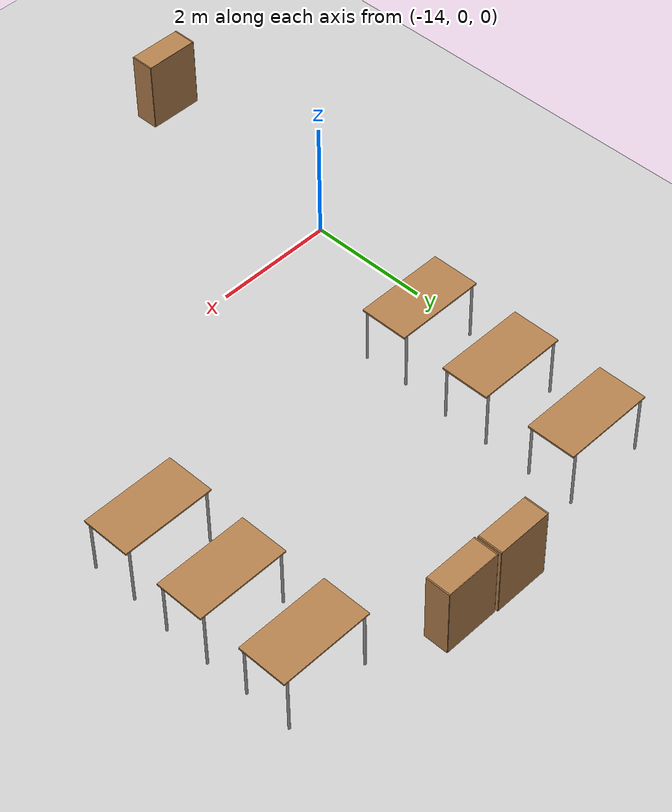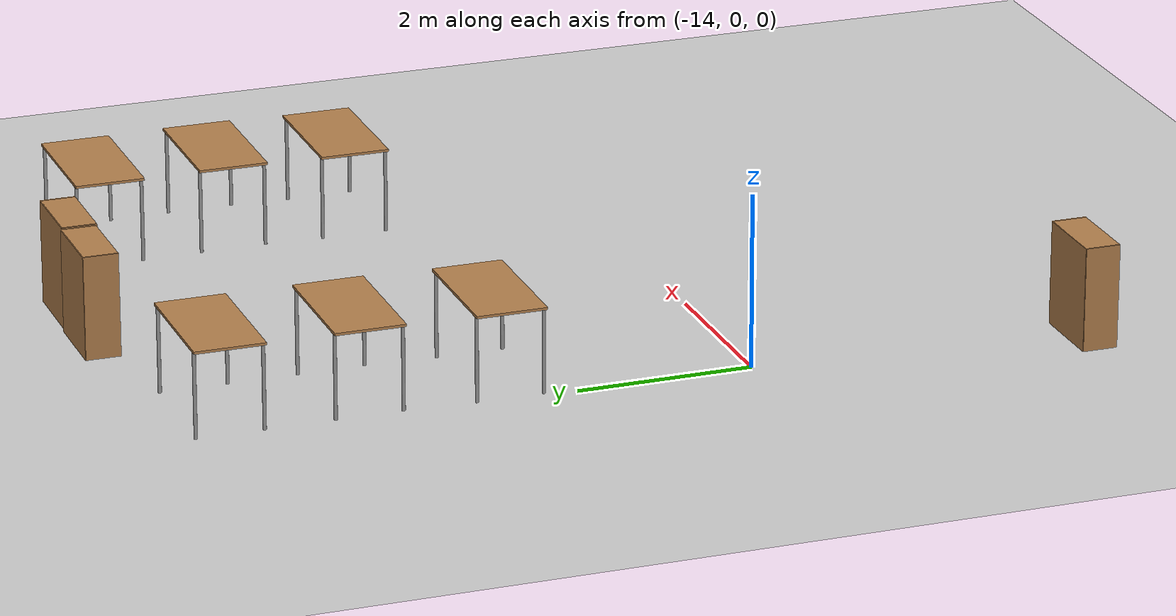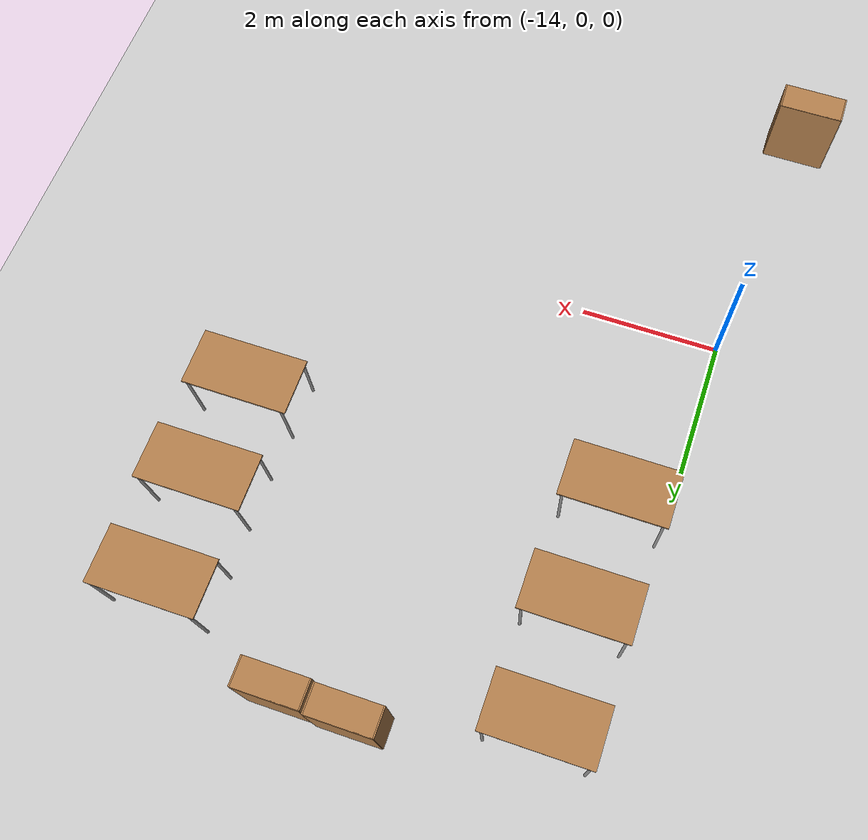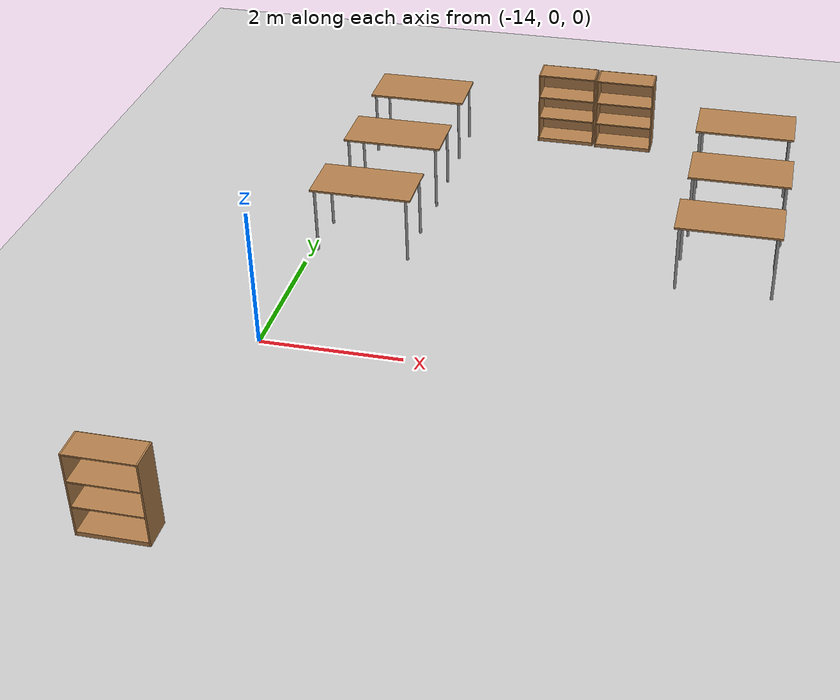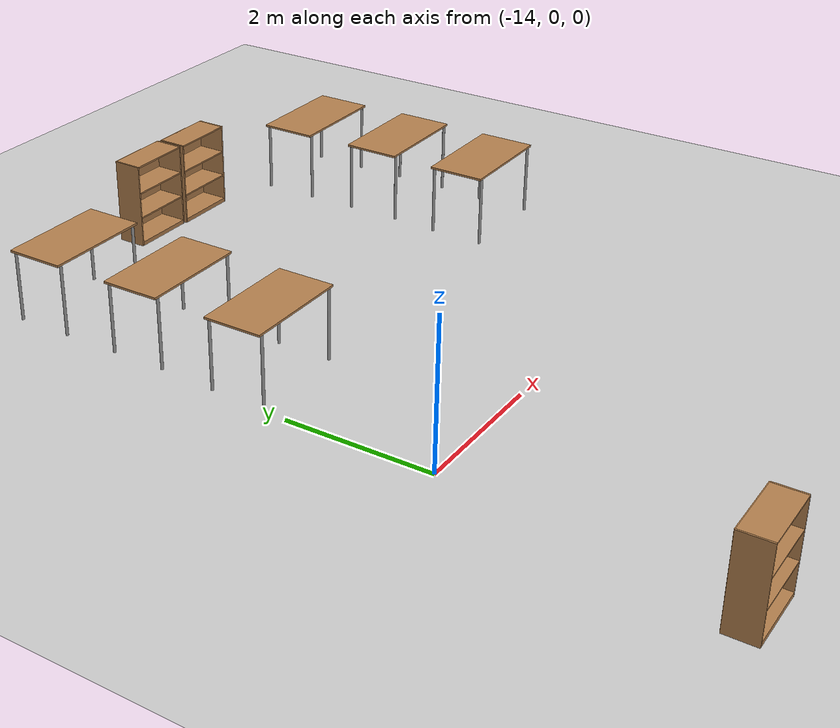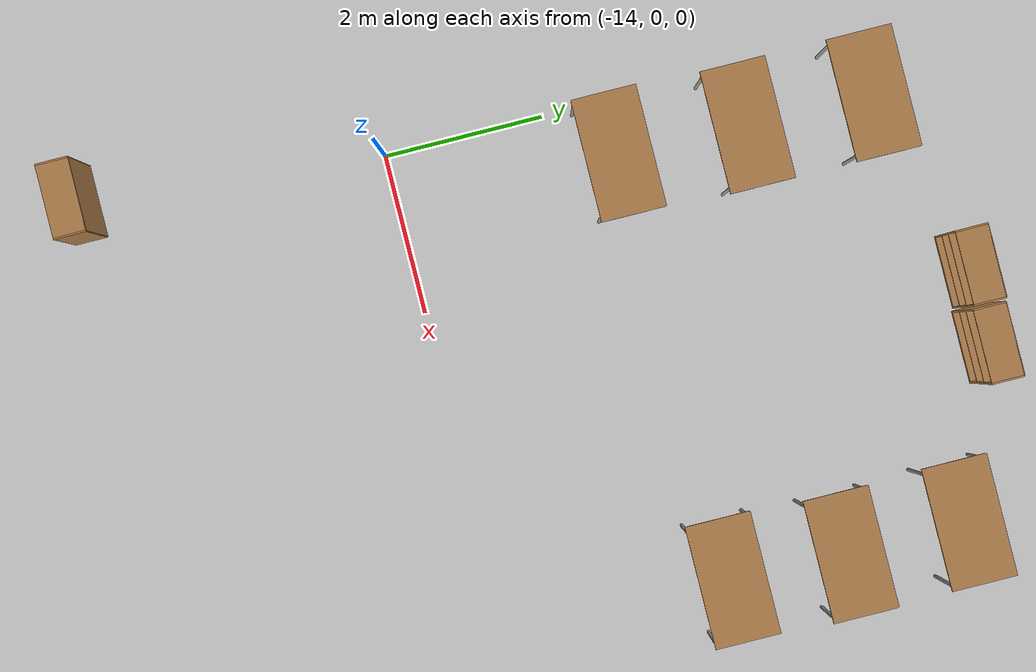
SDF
<sdf version="1.6">
 <world name="default">
  <model name="ground_plane">
   <static>1</static>
   <link name="link">
    <collision name="collision">
     <geometry><plane><normal>0 0 1</normal><size>100 100</size></plane></geometry>
     <surface>
      <contact><collide_bitmask>65535</collide_bitmask></contact>
      <friction><ode><mu>100</mu><mu2>50</mu2></ode></friction>
     </surface>
    </collision>
    <visual name="visual">
     <cast_shadows>0</cast_shadows>
     <geometry><plane><normal>0 0 1</normal><size>100 100</size></plane></geometry>
     <material>
      <script><uri>file://media/materials/scripts/gazebo.material</uri><name>Gazebo/Grey</name></script>
     </material>
    </visual>
   </link>
  </model>
  <model name="bookshelf_2">
   <static>1</static>
   <link name="link">
    <inertial><mass>1</mass></inertial>
    <collision name="back">
     <pose>0 0.005 0.6 0 -0 0</pose>
     <geometry><box><size>0.9 0.01 1.2</size></box></geometry>
    </collision>
    <visual name="visual1">
     <pose>0 0.005 0.6 0 -0 0</pose>
     <geometry><box><size>0.9 0.01 1.2</size></box></geometry>
     <material>
      <script><uri>file://media/materials/scripts/gazebo.material</uri><name>Gazebo/Wood</name></script>
     </material>
    </visual>
    <collision name="left_side">
     <pose>0.45 -0.195 0.6 0 -0 0</pose>
     <geometry><box><size>0.02 0.4 1.2</size></box></geometry>
    </collision>
    <visual name="visual2">
     <pose>0.45 -0.195 0.6 0 -0 0</pose>
     <geometry><box><size>0.02 0.4 1.2</size></box></geometry>
     <material>
      <script><uri>file://media/materials/scripts/gazebo.material</uri><name>Gazebo/Wood</name></script>
     </material>
    </visual>
    <collision name="right_side">
     <pose>-0.45 -0.195 0.6 0 -0 0</pose>
     <geometry><box><size>0.02 0.4 1.2</size></box></geometry>
    </collision>
    <visual name="visual3">
     <pose>-0.45 -0.195 0.6 0 -0 0</pose>
     <geometry><box><size>0.02 0.4 1.2</size></box></geometry>
     <material>
      <script><uri>file://media/materials/scripts/gazebo.material</uri><name>Gazebo/Wood</name></script>
     </material>
    </visual>
    <collision name="bottom">
     <pose>0 -0.195 0.03 0 -0 0</pose>
     <geometry><box><size>0.88 0.4 0.06</size></box></geometry>
    </collision>
    <visual name="visual4">
     <pose>0 -0.195 0.03 0 -0 0</pose>
     <geometry><box><size>0.88 0.4 0.06</size></box></geometry>
     <material>
      <script><uri>file://media/materials/scripts/gazebo.material</uri><name>Gazebo/Wood</name></script>
     </material>
    </visual>
    <collision name="top">
     <pose>0 -0.195 1.19 0 -0 0</pose>
     <geometry><box><size>0.88 0.4 0.02</size></box></geometry>
    </collision>
    <visual name="visual5">
     <pose>0 -0.195 1.19 0 -0 0</pose>
     <geometry><box><size>0.88 0.4 0.02</size></box></geometry>
     <material>
      <script><uri>file://media/materials/scripts/gazebo.material</uri><name>Gazebo/Wood</name></script>
     </material>
    </visual>
    <collision name="low_shelf">
     <pose>0 -0.195 0.43 0 -0 0</pose>
     <geometry><box><size>0.88 0.4 0.02</size></box></geometry>
    </collision>
    <visual name="visual6">
     <pose>0 -0.195 0.43 0 -0 0</pose>
     <geometry><box><size>0.88 0.4 0.02</size></box></geometry>
     <material>
      <script><uri>file://media/materials/scripts/gazebo.material</uri><name>Gazebo/Wood</name></script>
     </material>
    </visual>
    <collision name="high_shelf">
     <pose>0 -0.195 0.8 0 -0 0</pose>
     <geometry><box><size>0.88 0.4 0.02</size></box></geometry>
    </collision>
    <visual name="visual7">
     <pose>0 -0.195 0.8 0 -0 0</pose>
     <geometry><box><size>0.88 0.4 0.02</size></box></geometry>
     <material>
      <script><uri>file://media/materials/scripts/gazebo.material</uri><name>Gazebo/Wood</name></script>
     </material>
    </visual>
   </link>
   <pose>-9.95693 6.71493 0 0 -0 0</pose>
  </model>
  <model name="bookshelf_3">
   <static>1</static>
   <link name="link">
    <inertial><mass>1</mass></inertial>
    <collision name="back">
     <pose>0 0.005 0.6 0 -0 0</pose>
     <geometry><box><size>0.9 0.01 1.2</size></box></geometry>
    </collision>
    <visual name="visual1">
     <pose>0 0.005 0.6 0 -0 0</pose>
     <geometry><box><size>0.9 0.01 1.2</size></box></geometry>
     <material>
      <script><uri>file://media/materials/scripts/gazebo.material</uri><name>Gazebo/Wood</name></script>
     </material>
    </visual>
    <collision name="left_side">
     <pose>0.45 -0.195 0.6 0 -0 0</pose>
     <geometry><box><size>0.02 0.4 1.2</size></box></geometry>
    </collision>
    <visual name="visual2">
     <pose>0.45 -0.195 0.6 0 -0 0</pose>
     <geometry><box><size>0.02 0.4 1.2</size></box></geometry>
     <material>
      <script><uri>file://media/materials/scripts/gazebo.material</uri><name>Gazebo/Wood</name></script>
     </material>
    </visual>
    <collision name="right_side">
     <pose>-0.45 -0.195 0.6 0 -0 0</pose>
     <geometry><box><size>0.02 0.4 1.2</size></box></geometry>
    </collision>
    <visual name="visual3">
     <pose>-0.45 -0.195 0.6 0 -0 0</pose>
     <geometry><box><size>0.02 0.4 1.2</size></box></geometry>
     <material>
      <script><uri>file://media/materials/scripts/gazebo.material</uri><name>Gazebo/Wood</name></script>
     </material>
    </visual>
    <collision name="bottom">
     <pose>0 -0.195 0.03 0 -0 0</pose>
     <geometry><box><size>0.88 0.4 0.06</size></box></geometry>
    </collision>
    <visual name="visual4">
     <pose>0 -0.195 0.03 0 -0 0</pose>
     <geometry><box><size>0.88 0.4 0.06</size></box></geometry>
     <material>
      <script><uri>file://media/materials/scripts/gazebo.material</uri><name>Gazebo/Wood</name></script>
     </material>
    </visual>
    <collision name="top">
     <pose>0 -0.195 1.19 0 -0 0</pose>
     <geometry><box><size>0.88 0.4 0.02</size></box></geometry>
    </collision>
    <visual name="visual5">
     <pose>0 -0.195 1.19 0 -0 0</pose>
     <geometry><box><size>0.88 0.4 0.02</size></box></geometry>
     <material>
      <script><uri>file://media/materials/scripts/gazebo.material</uri><name>Gazebo/Wood</name></script>
     </material>
    </visual>
    <collision name="low_shelf">
     <pose>0 -0.195 0.43 0 -0 0</pose>
     <geometry><box><size>0.88 0.4 0.02</size></box></geometry>
    </collision>
    <visual name="visual6">
     <pose>0 -0.195 0.43 0 -0 0</pose>
     <geometry><box><size>0.88 0.4 0.02</size></box></geometry>
     <material>
      <script><uri>file://media/materials/scripts/gazebo.material</uri><name>Gazebo/Wood</name></script>
     </material>
    </visual>
    <collision name="high_shelf">
     <pose>0 -0.195 0.8 0 -0 0</pose>
     <geometry><box><size>0.88 0.4 0.02</size></box></geometry>
    </collision>
    <visual name="visual7">
     <pose>0 -0.195 0.8 0 -0 0</pose>
     <geometry><box><size>0.88 0.4 0.02</size></box></geometry>
     <material>
      <script><uri>file://media/materials/scripts/gazebo.material</uri><name>Gazebo/Wood</name></script>
     </material>
    </visual>
   </link>
   <pose>-10.9048 6.73806 0 0 -0 0</pose>
  </model>
  <model name="table_7">
   <static>1</static>
   <link name="link">
    <collision name="surface">
     <pose>0 0 1 0 -0 0</pose>
     <geometry><box><size>1.5 0.8 0.03</size></box></geometry>
     <surface><friction><ode><mu>0.6</mu><mu2>0.6</mu2></ode></friction></surface>
    </collision>
    <visual name="visual1">
     <pose>0 0 1 0 -0 0</pose>
     <geometry><box><size>1.5 0.8 0.03</size></box></geometry>
     <material>
      <script><uri>file://media/materials/scripts/gazebo.material</uri><name>Gazebo/Wood</name></script>
     </material>
    </visual>
    <collision name="front_left_leg">
     <pose>0.68 0.38 0.5 0 -0 0</pose>
     <geometry><cylinder><radius>0.02</radius><length>1</length></cylinder></geometry>
    </collision>
    <visual name="front_left_leg">
     <pose>0.68 0.38 0.5 0 -0 0</pose>
     <geometry><cylinder><radius>0.02</radius><length>1</length></cylinder></geometry>
     <material>
      <script><uri>file://media/materials/scripts/gazebo.material</uri><name>Gazebo/Grey</name></script>
     </material>
    </visual>
    <collision name="front_right_leg">
     <pose>0.68 -0.38 0.5 0 -0 0</pose>
     <geometry><cylinder><radius>0.02</radius><length>1</length></cylinder></geometry>
    </collision>
    <visual name="front_right_leg">
     <pose>0.68 -0.38 0.5 0 -0 0</pose>
     <geometry><cylinder><radius>0.02</radius><length>1</length></cylinder></geometry>
     <material>
      <script><uri>file://media/materials/scripts/gazebo.material</uri><name>Gazebo/Grey</name></script>
     </material>
    </visual>
    <collision name="back_right_leg">
     <pose>-0.68 -0.38 0.5 0 -0 0</pose>
     <geometry><cylinder><radius>0.02</radius><length>1</length></cylinder></geometry>
    </collision>
    <visual name="back_right_leg">
     <pose>-0.68 -0.38 0.5 0 -0 0</pose>
     <geometry><cylinder><radius>0.02</radius><length>1</length></cylinder></geometry>
     <material>
      <script><uri>file://media/materials/scripts/gazebo.material</uri><name>Gazebo/Grey</name></script>
     </material>
    </visual>
    <collision name="back_left_leg">
     <pose>-0.68 0.38 0.5 0 -0 0</pose>
     <geometry><cylinder><radius>0.02</radius><length>1</length></cylinder></geometry>
    </collision>
    <visual name="back_left_leg">
     <pose>-0.68 0.38 0.5 0 -0 0</pose>
     <geometry><cylinder><radius>0.02</radius><length>1</length></cylinder></geometry>
     <material>
      <script><uri>file://media/materials/scripts/gazebo.material</uri><name>Gazebo/Grey</name></script>
     </material>
    </visual>
   </link>
   <pose>-7.9682 5.69762 0 0 -0 0</pose>
  </model>
  <model name="table_8">
   <static>1</static>
   <link name="link">
    <collision name="surface">
     <pose>0 0 1 0 -0 0</pose>
     <geometry><box><size>1.5 0.8 0.03</size></box></geometry>
     <surface><friction><ode><mu>0.6</mu><mu2>0.6</mu2></ode></friction></surface>
    </collision>
    <visual name="visual1">
     <pose>0 0 1 0 -0 0</pose>
     <geometry><box><size>1.5 0.8 0.03</size></box></geometry>
     <material>
      <script><uri>file://media/materials/scripts/gazebo.material</uri><name>Gazebo/Wood</name></script>
     </material>
    </visual>
    <collision name="front_left_leg">
     <pose>0.68 0.38 0.5 0 -0 0</pose>
     <geometry><cylinder><radius>0.02</radius><length>1</length></cylinder></geometry>
    </collision>
    <visual name="front_left_leg">
     <pose>0.68 0.38 0.5 0 -0 0</pose>
     <geometry><cylinder><radius>0.02</radius><length>1</length></cylinder></geometry>
     <material>
      <script><uri>file://media/materials/scripts/gazebo.material</uri><name>Gazebo/Grey</name></script>
     </material>
    </visual>
    <collision name="front_right_leg">
     <pose>0.68 -0.38 0.5 0 -0 0</pose>
     <geometry><cylinder><radius>0.02</radius><length>1</length></cylinder></geometry>
    </collision>
    <visual name="front_right_leg">
     <pose>0.68 -0.38 0.5 0 -0 0</pose>
     <geometry><cylinder><radius>0.02</radius><length>1</length></cylinder></geometry>
     <material>
      <script><uri>file://media/materials/scripts/gazebo.material</uri><name>Gazebo/Grey</name></script>
     </material>
    </visual>
    <collision name="back_right_leg">
     <pose>-0.68 -0.38 0.5 0 -0 0</pose>
     <geometry><cylinder><radius>0.02</radius><length>1</length></cylinder></geometry>
    </collision>
    <visual name="back_right_leg">
     <pose>-0.68 -0.38 0.5 0 -0 0</pose>
     <geometry><cylinder><radius>0.02</radius><length>1</length></cylinder></geometry>
     <material>
      <script><uri>file://media/materials/scripts/gazebo.material</uri><name>Gazebo/Grey</name></script>
     </material>
    </visual>
    <collision name="back_left_leg">
     <pose>-0.68 0.38 0.5 0 -0 0</pose>
     <geometry><cylinder><radius>0.02</radius><length>1</length></cylinder></geometry>
    </collision>
    <visual name="back_left_leg">
     <pose>-0.68 0.38 0.5 0 -0 0</pose>
     <geometry><cylinder><radius>0.02</radius><length>1</length></cylinder></geometry>
     <material>
      <script><uri>file://media/materials/scripts/gazebo.material</uri><name>Gazebo/Grey</name></script>
     </material>
    </visual>
   </link>
   <pose>-7.94504 4.24099 0 0 -0 0</pose>
  </model>
  <model name="table_9">
   <static>1</static>
   <link name="link">
    <collision name="surface">
     <pose>0 0 1 0 -0 0</pose>
     <geometry><box><size>1.5 0.8 0.03</size></box></geometry>
     <surface><friction><ode><mu>0.6</mu><mu2>0.6</mu2></ode></friction></surface>
    </collision>
    <visual name="visual1">
     <pose>0 0 1 0 -0 0</pose>
     <geometry><box><size>1.5 0.8 0.03</size></box></geometry>
     <material>
      <script><uri>file://media/materials/scripts/gazebo.material</uri><name>Gazebo/Wood</name></script>
     </material>
    </visual>
    <collision name="front_left_leg">
     <pose>0.68 0.38 0.5 0 -0 0</pose>
     <geometry><cylinder><radius>0.02</radius><length>1</length></cylinder></geometry>
    </collision>
    <visual name="front_left_leg">
     <pose>0.68 0.38 0.5 0 -0 0</pose>
     <geometry><cylinder><radius>0.02</radius><length>1</length></cylinder></geometry>
     <material>
      <script><uri>file://media/materials/scripts/gazebo.material</uri><name>Gazebo/Grey</name></script>
     </material>
    </visual>
    <collision name="front_right_leg">
     <pose>0.68 -0.38 0.5 0 -0 0</pose>
     <geometry><cylinder><radius>0.02</radius><length>1</length></cylinder></geometry>
    </collision>
    <visual name="front_right_leg">
     <pose>0.68 -0.38 0.5 0 -0 0</pose>
     <geometry><cylinder><radius>0.02</radius><length>1</length></cylinder></geometry>
     <material>
      <script><uri>file://media/materials/scripts/gazebo.material</uri><name>Gazebo/Grey</name></script>
     </material>
    </visual>
    <collision name="back_right_leg">
     <pose>-0.68 -0.38 0.5 0 -0 0</pose>
     <geometry><cylinder><radius>0.02</radius><length>1</length></cylinder></geometry>
    </collision>
    <visual name="back_right_leg">
     <pose>-0.68 -0.38 0.5 0 -0 0</pose>
     <geometry><cylinder><radius>0.02</radius><length>1</length></cylinder></geometry>
     <material>
      <script><uri>file://media/materials/scripts/gazebo.material</uri><name>Gazebo/Grey</name></script>
     </material>
    </visual>
    <collision name="back_left_leg">
     <pose>-0.68 0.38 0.5 0 -0 0</pose>
     <geometry><cylinder><radius>0.02</radius><length>1</length></cylinder></geometry>
    </collision>
    <visual name="back_left_leg">
     <pose>-0.68 0.38 0.5 0 -0 0</pose>
     <geometry><cylinder><radius>0.02</radius><length>1</length></cylinder></geometry>
     <material>
      <script><uri>file://media/materials/scripts/gazebo.material</uri><name>Gazebo/Grey</name></script>
     </material>
    </visual>
   </link>
   <pose>-7.99136 2.80747 0 0 -0 0</pose>
  </model>
  <model name="table_10">
   <static>1</static>
   <link name="link">
    <collision name="surface">
     <pose>0 0 1 0 -0 0</pose>
     <geometry><box><size>1.5 0.8 0.03</size></box></geometry>
     <surface><friction><ode><mu>0.6</mu><mu2>0.6</mu2></ode></friction></surface>
    </collision>
    <visual name="visual1">
     <pose>0 0 1 0 -0 0</pose>
     <geometry><box><size>1.5 0.8 0.03</size></box></geometry>
     <material>
      <script><uri>file://media/materials/scripts/gazebo.material</uri><name>Gazebo/Wood</name></script>
     </material>
    </visual>
    <collision name="front_left_leg">
     <pose>0.68 0.38 0.5 0 -0 0</pose>
     <geometry><cylinder><radius>0.02</radius><length>1</length></cylinder></geometry>
    </collision>
    <visual name="front_left_leg">
     <pose>0.68 0.38 0.5 0 -0 0</pose>
     <geometry><cylinder><radius>0.02</radius><length>1</length></cylinder></geometry>
     <material>
      <script><uri>file://media/materials/scripts/gazebo.material</uri><name>Gazebo/Grey</name></script>
     </material>
    </visual>
    <collision name="front_right_leg">
     <pose>0.68 -0.38 0.5 0 -0 0</pose>
     <geometry><cylinder><radius>0.02</radius><length>1</length></cylinder></geometry>
    </collision>
    <visual name="front_right_leg">
     <pose>0.68 -0.38 0.5 0 -0 0</pose>
     <geometry><cylinder><radius>0.02</radius><length>1</length></cylinder></geometry>
     <material>
      <script><uri>file://media/materials/scripts/gazebo.material</uri><name>Gazebo/Grey</name></script>
     </material>
    </visual>
    <collision name="back_right_leg">
     <pose>-0.68 -0.38 0.5 0 -0 0</pose>
     <geometry><cylinder><radius>0.02</radius><length>1</length></cylinder></geometry>
    </collision>
    <visual name="back_right_leg">
     <pose>-0.68 -0.38 0.5 0 -0 0</pose>
     <geometry><cylinder><radius>0.02</radius><length>1</length></cylinder></geometry>
     <material>
      <script><uri>file://media/materials/scripts/gazebo.material</uri><name>Gazebo/Grey</name></script>
     </material>
    </visual>
    <collision name="back_left_leg">
     <pose>-0.68 0.38 0.5 0 -0 0</pose>
     <geometry><cylinder><radius>0.02</radius><length>1</length></cylinder></geometry>
    </collision>
    <visual name="back_left_leg">
     <pose>-0.68 0.38 0.5 0 -0 0</pose>
     <geometry><cylinder><radius>0.02</radius><length>1</length></cylinder></geometry>
     <material>
      <script><uri>file://media/materials/scripts/gazebo.material</uri><name>Gazebo/Grey</name></script>
     </material>
    </visual>
   </link>
   <pose>-13.1936 5.85945 0 0 -0 0</pose>
  </model>
  <model name="table_11">
   <static>1</static>
   <link name="link">
    <collision name="surface">
     <pose>0 0 1 0 -0 0</pose>
     <geometry><box><size>1.5 0.8 0.03</size></box></geometry>
     <surface><friction><ode><mu>0.6</mu><mu2>0.6</mu2></ode></friction></surface>
    </collision>
    <visual name="visual1">
     <pose>0 0 1 0 -0 0</pose>
     <geometry><box><size>1.5 0.8 0.03</size></box></geometry>
     <material>
      <script><uri>file://media/materials/scripts/gazebo.material</uri><name>Gazebo/Wood</name></script>
     </material>
    </visual>
    <collision name="front_left_leg">
     <pose>0.68 0.38 0.5 0 -0 0</pose>
     <geometry><cylinder><radius>0.02</radius><length>1</length></cylinder></geometry>
    </collision>
    <visual name="front_left_leg">
     <pose>0.68 0.38 0.5 0 -0 0</pose>
     <geometry><cylinder><radius>0.02</radius><length>1</length></cylinder></geometry>
     <material>
      <script><uri>file://media/materials/scripts/gazebo.material</uri><name>Gazebo/Grey</name></script>
     </material>
    </visual>
    <collision name="front_right_leg">
     <pose>0.68 -0.38 0.5 0 -0 0</pose>
     <geometry><cylinder><radius>0.02</radius><length>1</length></cylinder></geometry>
    </collision>
    <visual name="front_right_leg">
     <pose>0.68 -0.38 0.5 0 -0 0</pose>
     <geometry><cylinder><radius>0.02</radius><length>1</length></cylinder></geometry>
     <material>
      <script><uri>file://media/materials/scripts/gazebo.material</uri><name>Gazebo/Grey</name></script>
     </material>
    </visual>
    <collision name="back_right_leg">
     <pose>-0.68 -0.38 0.5 0 -0 0</pose>
     <geometry><cylinder><radius>0.02</radius><length>1</length></cylinder></geometry>
    </collision>
    <visual name="back_right_leg">
     <pose>-0.68 -0.38 0.5 0 -0 0</pose>
     <geometry><cylinder><radius>0.02</radius><length>1</length></cylinder></geometry>
     <material>
      <script><uri>file://media/materials/scripts/gazebo.material</uri><name>Gazebo/Grey</name></script>
     </material>
    </visual>
    <collision name="back_left_leg">
     <pose>-0.68 0.38 0.5 0 -0 0</pose>
     <geometry><cylinder><radius>0.02</radius><length>1</length></cylinder></geometry>
    </collision>
    <visual name="back_left_leg">
     <pose>-0.68 0.38 0.5 0 -0 0</pose>
     <geometry><cylinder><radius>0.02</radius><length>1</length></cylinder></geometry>
     <material>
      <script><uri>file://media/materials/scripts/gazebo.material</uri><name>Gazebo/Grey</name></script>
     </material>
    </visual>
   </link>
   <pose>-13.1936 4.31034 0 0 -0 0</pose>
  </model>
  <model name="table_12">
   <static>1</static>
   <link name="link">
    <collision name="surface">
     <pose>0 0 1 0 -0 0</pose>
     <geometry><box><size>1.5 0.8 0.03</size></box></geometry>
     <surface><friction><ode><mu>0.6</mu><mu2>0.6</mu2></ode></friction></surface>
    </collision>
    <visual name="visual1">
     <pose>0 0 1 0 -0 0</pose>
     <geometry><box><size>1.5 0.8 0.03</size></box></geometry>
     <material>
      <script><uri>file://media/materials/scripts/gazebo.material</uri><name>Gazebo/Wood</name></script>
     </material>
    </visual>
    <collision name="front_left_leg">
     <pose>0.68 0.38 0.5 0 -0 0</pose>
     <geometry><cylinder><radius>0.02</radius><length>1</length></cylinder></geometry>
    </collision>
    <visual name="front_left_leg">
     <pose>0.68 0.38 0.5 0 -0 0</pose>
     <geometry><cylinder><radius>0.02</radius><length>1</length></cylinder></geometry>
     <material>
      <script><uri>file://media/materials/scripts/gazebo.material</uri><name>Gazebo/Grey</name></script>
     </material>
    </visual>
    <collision name="front_right_leg">
     <pose>0.68 -0.38 0.5 0 -0 0</pose>
     <geometry><cylinder><radius>0.02</radius><length>1</length></cylinder></geometry>
    </collision>
    <visual name="front_right_leg">
     <pose>0.68 -0.38 0.5 0 -0 0</pose>
     <geometry><cylinder><radius>0.02</radius><length>1</length></cylinder></geometry>
     <material>
      <script><uri>file://media/materials/scripts/gazebo.material</uri><name>Gazebo/Grey</name></script>
     </material>
    </visual>
    <collision name="back_right_leg">
     <pose>-0.68 -0.38 0.5 0 -0 0</pose>
     <geometry><cylinder><radius>0.02</radius><length>1</length></cylinder></geometry>
    </collision>
    <visual name="back_right_leg">
     <pose>-0.68 -0.38 0.5 0 -0 0</pose>
     <geometry><cylinder><radius>0.02</radius><length>1</length></cylinder></geometry>
     <material>
      <script><uri>file://media/materials/scripts/gazebo.material</uri><name>Gazebo/Grey</name></script>
     </material>
    </visual>
    <collision name="back_left_leg">
     <pose>-0.68 0.38 0.5 0 -0 0</pose>
     <geometry><cylinder><radius>0.02</radius><length>1</length></cylinder></geometry>
    </collision>
    <visual name="back_left_leg">
     <pose>-0.68 0.38 0.5 0 -0 0</pose>
     <geometry><cylinder><radius>0.02</radius><length>1</length></cylinder></geometry>
     <material>
      <script><uri>file://media/materials/scripts/gazebo.material</uri><name>Gazebo/Grey</name></script>
     </material>
    </visual>
   </link>
   <pose>-13.242 2.74052 0 0 -0 0</pose>
  </model>
  <model name="bookshelf_4">
   <static>1</static>
   <link name="link">
    <inertial><mass>1</mass></inertial>
    <collision name="back">
     <pose>0 0.005 0.6 0 -0 0</pose>
     <geometry><box><size>0.9 0.01 1.2</size></box></geometry>
    </collision>
    <visual name="visual1">
     <pose>0 0.005 0.6 0 -0 0</pose>
     <geometry><box><size>0.9 0.01 1.2</size></box></geometry>
     <material>
      <script><uri>file://media/materials/scripts/gazebo.material</uri><name>Gazebo/Wood</name></script>
     </material>
    </visual>
    <collision name="left_side">
     <pose>0.45 -0.195 0.6 0 -0 0</pose>
     <geometry><box><size>0.02 0.4 1.2</size></box></geometry>
    </collision>
    <visual name="visual2">
     <pose>0.45 -0.195 0.6 0 -0 0</pose>
     <geometry><box><size>0.02 0.4 1.2</size></box></geometry>
     <material>
      <script><uri>file://media/materials/scripts/gazebo.material</uri><name>Gazebo/Wood</name></script>
     </material>
    </visual>
    <collision name="right_side">
     <pose>-0.45 -0.195 0.6 0 -0 0</pose>
     <geometry><box><size>0.02 0.4 1.2</size></box></geometry>
    </collision>
    <visual name="visual3">
     <pose>-0.45 -0.195 0.6 0 -0 0</pose>
     <geometry><box><size>0.02 0.4 1.2</size></box></geometry>
     <material>
      <script><uri>file://media/materials/scripts/gazebo.material</uri><name>Gazebo/Wood</name></script>
     </material>
    </visual>
    <collision name="bottom">
     <pose>0 -0.195 0.03 0 -0 0</pose>
     <geometry><box><size>0.88 0.4 0.06</size></box></geometry>
    </collision>
    <visual name="visual4">
     <pose>0 -0.195 0.03 0 -0 0</pose>
     <geometry><box><size>0.88 0.4 0.06</size></box></geometry>
     <material>
      <script><uri>file://media/materials/scripts/gazebo.material</uri><name>Gazebo/Wood</name></script>
     </material>
    </visual>
    <collision name="top">
     <pose>0 -0.195 1.19 0 -0 0</pose>
     <geometry><box><size>0.88 0.4 0.02</size></box></geometry>
    </collision>
    <visual name="visual5">
     <pose>0 -0.195 1.19 0 -0 0</pose>
     <geometry><box><size>0.88 0.4 0.02</size></box></geometry>
     <material>
      <script><uri>file://media/materials/scripts/gazebo.material</uri><name>Gazebo/Wood</name></script>
     </material>
    </visual>
    <collision name="low_shelf">
     <pose>0 -0.195 0.43 0 -0 0</pose>
     <geometry><box><size>0.88 0.4 0.02</size></box></geometry>
    </collision>
    <visual name="visual6">
     <pose>0 -0.195 0.43 0 -0 0</pose>
     <geometry><box><size>0.88 0.4 0.02</size></box></geometry>
     <material>
      <script><uri>file://media/materials/scripts/gazebo.material</uri><name>Gazebo/Wood</name></script>
     </material>
    </visual>
    <collision name="high_shelf">
     <pose>0 -0.195 0.8 0 -0 0</pose>
     <geometry><box><size>0.88 0.4 0.02</size></box></geometry>
    </collision>
    <visual name="visual7">
     <pose>0 -0.195 0.8 0 -0 0</pose>
     <geometry><box><size>0.88 0.4 0.02</size></box></geometry>
     <material>
      <script><uri>file://media/materials/scripts/gazebo.material</uri><name>Gazebo/Wood</name></script>
     </material>
    </visual>
   </link>
   <pose>-14.3324 -3.58759 0 0 -0 0</pose>
  </model>
 </world>
</sdf>
